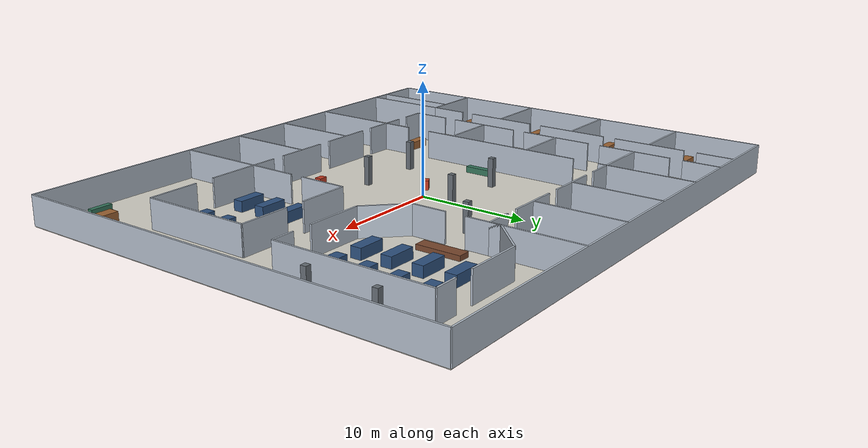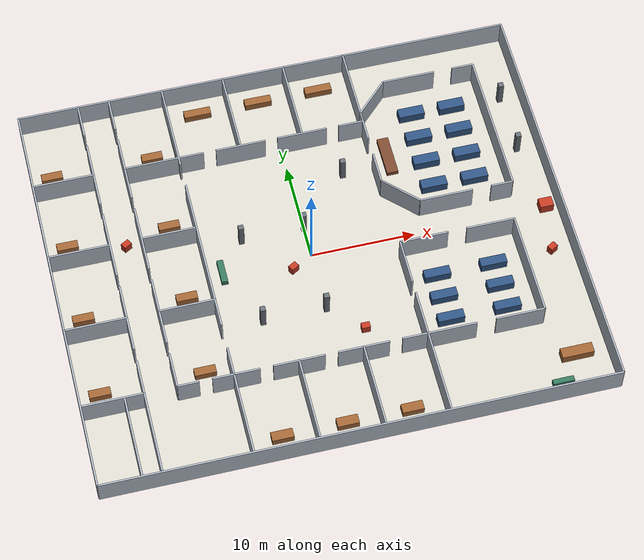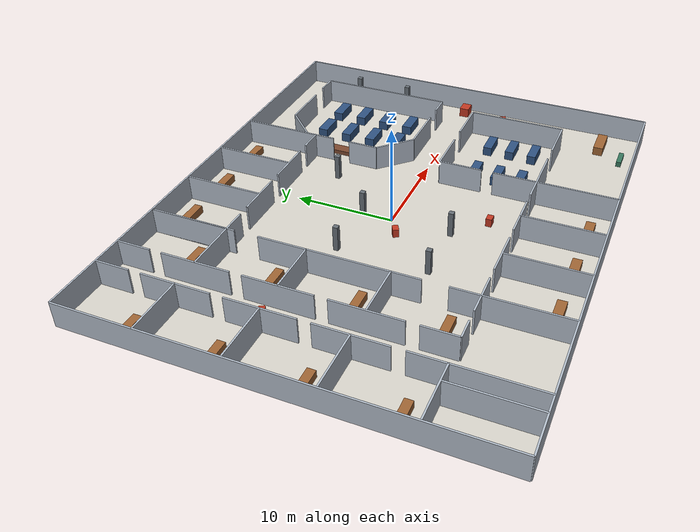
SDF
<sdf version="1.9">
  <world name="teaching_training_v1_test_101">
    <physics name="default" type="ignored">
      <max_step_size>0.01</max_step_size>
      <real_time_factor>1.0</real_time_factor>
    </physics>
    <gravity>0 0 -9.81</gravity>
    <plugin filename="gz-sim-physics-system" name="gz::sim::systems::Physics" />
    <plugin filename="gz-sim-user-commands-system" name="gz::sim::systems::UserCommands" />
    <plugin filename="gz-sim-scene-broadcaster-system" name="gz::sim::systems::SceneBroadcaster" />
    <plugin filename="gz-sim-sensors-system" name="gz::sim::systems::Sensors">
      <render_engine>ogre2</render_engine>
    </plugin>
    <plugin filename="gz-sim-imu-system" name="gz::sim::systems::Imu" />
    <scene>
      <ambient>.7 .7 .7 1</ambient>
      <background>.85 .88 .9 1</background>
    </scene>
    <light name="sun" type="directional">
      <pose>0 0 15 0 0 0</pose>
      <diffuse>.8 .8 .8 1</diffuse>
      <direction>-.3 -.2 -1</direction>
    </light>
    <model name="teaching_building">
      <static>true</static>
      <link name="structure">
        <collision name="floor_collision">
          <pose>0 0 -0.05 0 0 0</pose>
          <geometry>
            <box>
              <size>48.0 40.0 0.1</size>
            </box>
          </geometry>
        </collision>
        <visual name="floor_visual">
          <pose>0 0 -0.05 0 0 0</pose>
          <geometry>
            <box>
              <size>48.0 40.0 0.1</size>
            </box>
          </geometry>
          <material>
            <ambient>.84 .83 .79 1</ambient>
            <diffuse>.84 .83 .79 1</diffuse>
          </material>
        </visual>
        <collision name="outer_south_0_collision">
          <pose>0.0 -20.0 1.3 0 0 0.0</pose>
          <geometry>
            <box>
              <size>48.0 0.16 2.6</size>
            </box>
          </geometry>
        </collision>
        <visual name="outer_south_0_visual">
          <pose>0.0 -20.0 1.3 0 0 0.0</pose>
          <geometry>
            <box>
              <size>48.0 0.16 2.6</size>
            </box>
          </geometry>
          <material>
            <ambient>.7 .74 .79 1</ambient>
            <diffuse>.7 .74 .79 1</diffuse>
          </material>
        </visual>
        <collision name="outer_north_0_collision">
          <pose>0.0 20.0 1.3 0 0 0.0</pose>
          <geometry>
            <box>
              <size>48.0 0.16 2.6</size>
            </box>
          </geometry>
        </collision>
        <visual name="outer_north_0_visual">
          <pose>0.0 20.0 1.3 0 0 0.0</pose>
          <geometry>
            <box>
              <size>48.0 0.16 2.6</size>
            </box>
          </geometry>
          <material>
            <ambient>.7 .74 .79 1</ambient>
            <diffuse>.7 .74 .79 1</diffuse>
          </material>
        </visual>
        <collision name="outer_west_0_collision">
          <pose>-24.0 0.0 1.3 0 0 1.5707963267948966</pose>
          <geometry>
            <box>
              <size>40.0 0.16 2.6</size>
            </box>
          </geometry>
        </collision>
        <visual name="outer_west_0_visual">
          <pose>-24.0 0.0 1.3 0 0 1.5707963267948966</pose>
          <geometry>
            <box>
              <size>40.0 0.16 2.6</size>
            </box>
          </geometry>
          <material>
            <ambient>.7 .74 .79 1</ambient>
            <diffuse>.7 .74 .79 1</diffuse>
          </material>
        </visual>
        <collision name="outer_east_0_collision">
          <pose>24.0 0.0 1.3 0 0 1.5707963267948966</pose>
          <geometry>
            <box>
              <size>40.0 0.16 2.6</size>
            </box>
          </geometry>
        </collision>
        <visual name="outer_east_0_visual">
          <pose>24.0 0.0 1.3 0 0 1.5707963267948966</pose>
          <geometry>
            <box>
              <size>40.0 0.16 2.6</size>
            </box>
          </geometry>
          <material>
            <ambient>.7 .74 .79 1</ambient>
            <diffuse>.7 .74 .79 1</diffuse>
          </material>
        </visual>
        <collision name="west_spine_0_collision">
          <pose>-18.2 -10.3 1.3 0 0 1.5707963267948966</pose>
          <geometry>
            <box>
              <size>3.4 0.16 2.6</size>
            </box>
          </geometry>
        </collision>
        <visual name="west_spine_0_visual">
          <pose>-18.2 -10.3 1.3 0 0 1.5707963267948966</pose>
          <geometry>
            <box>
              <size>3.4 0.16 2.6</size>
            </box>
          </geometry>
          <material>
            <ambient>.7 .74 .79 1</ambient>
            <diffuse>.7 .74 .79 1</diffuse>
          </material>
        </visual>
        <collision name="west_spine_1_collision">
          <pose>-18.2 -4.0 1.3 0 0 1.5707963267948966</pose>
          <geometry>
            <box>
              <size>6.800000000000001 0.16 2.6</size>
            </box>
          </geometry>
        </collision>
        <visual name="west_spine_1_visual">
          <pose>-18.2 -4.0 1.3 0 0 1.5707963267948966</pose>
          <geometry>
            <box>
              <size>6.800000000000001 0.16 2.6</size>
            </box>
          </geometry>
          <material>
            <ambient>.7 .74 .79 1</ambient>
            <diffuse>.7 .74 .79 1</diffuse>
          </material>
        </visual>
        <collision name="west_spine_2_collision">
          <pose>-18.2 4.0 1.3 0 0 1.5707963267948966</pose>
          <geometry>
            <box>
              <size>6.799999999999999 0.16 2.6</size>
            </box>
          </geometry>
        </collision>
        <visual name="west_spine_2_visual">
          <pose>-18.2 4.0 1.3 0 0 1.5707963267948966</pose>
          <geometry>
            <box>
              <size>6.799999999999999 0.16 2.6</size>
            </box>
          </geometry>
          <material>
            <ambient>.7 .74 .79 1</ambient>
            <diffuse>.7 .74 .79 1</diffuse>
          </material>
        </visual>
        <collision name="west_spine_3_collision">
          <pose>-18.2 12.0 1.3 0 0 1.5707963267948966</pose>
          <geometry>
            <box>
              <size>6.799999999999997 0.16 2.6</size>
            </box>
          </geometry>
        </collision>
        <visual name="west_spine_3_visual">
          <pose>-18.2 12.0 1.3 0 0 1.5707963267948966</pose>
          <geometry>
            <box>
              <size>6.799999999999997 0.16 2.6</size>
            </box>
          </geometry>
          <material>
            <ambient>.7 .74 .79 1</ambient>
            <diffuse>.7 .74 .79 1</diffuse>
          </material>
        </visual>
        <collision name="west_spine_4_collision">
          <pose>-18.2 18.3 1.3 0 0 1.5707963267948966</pose>
          <geometry>
            <box>
              <size>3.3999999999999986 0.16 2.6</size>
            </box>
          </geometry>
        </collision>
        <visual name="west_spine_4_visual">
          <pose>-18.2 18.3 1.3 0 0 1.5707963267948966</pose>
          <geometry>
            <box>
              <size>3.3999999999999986 0.16 2.6</size>
            </box>
          </geometry>
          <material>
            <ambient>.7 .74 .79 1</ambient>
            <diffuse>.7 .74 .79 1</diffuse>
          </material>
        </visual>
        <collision name="east_spine_0_collision">
          <pose>-15.2 -10.3 1.3 0 0 1.5707963267948966</pose>
          <geometry>
            <box>
              <size>3.4 0.16 2.6</size>
            </box>
          </geometry>
        </collision>
        <visual name="east_spine_0_visual">
          <pose>-15.2 -10.3 1.3 0 0 1.5707963267948966</pose>
          <geometry>
            <box>
              <size>3.4 0.16 2.6</size>
            </box>
          </geometry>
          <material>
            <ambient>.7 .74 .79 1</ambient>
            <diffuse>.7 .74 .79 1</diffuse>
          </material>
        </visual>
        <collision name="east_spine_1_collision">
          <pose>-15.2 -4.0 1.3 0 0 1.5707963267948966</pose>
          <geometry>
            <box>
              <size>6.800000000000001 0.16 2.6</size>
            </box>
          </geometry>
        </collision>
        <visual name="east_spine_1_visual">
          <pose>-15.2 -4.0 1.3 0 0 1.5707963267948966</pose>
          <geometry>
            <box>
              <size>6.800000000000001 0.16 2.6</size>
            </box>
          </geometry>
          <material>
            <ambient>.7 .74 .79 1</ambient>
            <diffuse>.7 .74 .79 1</diffuse>
          </material>
        </visual>
        <collision name="east_spine_2_collision">
          <pose>-15.2 4.0 1.3 0 0 1.5707963267948966</pose>
          <geometry>
            <box>
              <size>6.799999999999999 0.16 2.6</size>
            </box>
          </geometry>
        </collision>
        <visual name="east_spine_2_visual">
          <pose>-15.2 4.0 1.3 0 0 1.5707963267948966</pose>
          <geometry>
            <box>
              <size>6.799999999999999 0.16 2.6</size>
            </box>
          </geometry>
          <material>
            <ambient>.7 .74 .79 1</ambient>
            <diffuse>.7 .74 .79 1</diffuse>
          </material>
        </visual>
        <collision name="east_spine_3_collision">
          <pose>-15.2 12.0 1.3 0 0 1.5707963267948966</pose>
          <geometry>
            <box>
              <size>6.799999999999997 0.16 2.6</size>
            </box>
          </geometry>
        </collision>
        <visual name="east_spine_3_visual">
          <pose>-15.2 12.0 1.3 0 0 1.5707963267948966</pose>
          <geometry>
            <box>
              <size>6.799999999999997 0.16 2.6</size>
            </box>
          </geometry>
          <material>
            <ambient>.7 .74 .79 1</ambient>
            <diffuse>.7 .74 .79 1</diffuse>
          </material>
        </visual>
        <collision name="east_spine_4_collision">
          <pose>-15.2 18.3 1.3 0 0 1.5707963267948966</pose>
          <geometry>
            <box>
              <size>3.3999999999999986 0.16 2.6</size>
            </box>
          </geometry>
        </collision>
        <visual name="east_spine_4_visual">
          <pose>-15.2 18.3 1.3 0 0 1.5707963267948966</pose>
          <geometry>
            <box>
              <size>3.3999999999999986 0.16 2.6</size>
            </box>
          </geometry>
          <material>
            <ambient>.7 .74 .79 1</ambient>
            <diffuse>.7 .74 .79 1</diffuse>
          </material>
        </visual>
        <collision name="classroom_hall_boundary_0_collision">
          <pose>-10.0 -10.6 1.3 0 0 1.5707963267948966</pose>
          <geometry>
            <box>
              <size>2.8 0.16 2.6</size>
            </box>
          </geometry>
        </collision>
        <visual name="classroom_hall_boundary_0_visual">
          <pose>-10.0 -10.6 1.3 0 0 1.5707963267948966</pose>
          <geometry>
            <box>
              <size>2.8 0.16 2.6</size>
            </box>
          </geometry>
          <material>
            <ambient>.7 .74 .79 1</ambient>
            <diffuse>.7 .74 .79 1</diffuse>
          </material>
        </visual>
        <collision name="classroom_hall_boundary_1_collision">
          <pose>-10.0 1.0 1.3 0 0 1.5707963267948966</pose>
          <geometry>
            <box>
              <size>15.600000000000001 0.16 2.6</size>
            </box>
          </geometry>
        </collision>
        <visual name="classroom_hall_boundary_1_visual">
          <pose>-10.0 1.0 1.3 0 0 1.5707963267948966</pose>
          <geometry>
            <box>
              <size>15.600000000000001 0.16 2.6</size>
            </box>
          </geometry>
          <material>
            <ambient>.7 .74 .79 1</ambient>
            <diffuse>.7 .74 .79 1</diffuse>
          </material>
        </visual>
        <collision name="classroom_hall_boundary_2_collision">
          <pose>-10.0 15.600000000000001 1.3 0 0 1.5707963267948966</pose>
          <geometry>
            <box>
              <size>8.8 0.16 2.6</size>
            </box>
          </geometry>
        </collision>
        <visual name="classroom_hall_boundary_2_visual">
          <pose>-10.0 15.600000000000001 1.3 0 0 1.5707963267948966</pose>
          <geometry>
            <box>
              <size>8.8 0.16 2.6</size>
            </box>
          </geometry>
          <material>
            <ambient>.7 .74 .79 1</ambient>
            <diffuse>.7 .74 .79 1</diffuse>
          </material>
        </visual>
        <collision name="west_partition_0_0_collision">
          <pose>-21.1 -12.0 1.3 0 0 0.0</pose>
          <geometry>
            <box>
              <size>5.800000000000001 0.16 2.6</size>
            </box>
          </geometry>
        </collision>
        <visual name="west_partition_0_0_visual">
          <pose>-21.1 -12.0 1.3 0 0 0.0</pose>
          <geometry>
            <box>
              <size>5.800000000000001 0.16 2.6</size>
            </box>
          </geometry>
          <material>
            <ambient>.7 .74 .79 1</ambient>
            <diffuse>.7 .74 .79 1</diffuse>
          </material>
        </visual>
        <collision name="east_partition_0_0_collision">
          <pose>-14.2 -12.0 1.3 0 0 0.0</pose>
          <geometry>
            <box>
              <size>2.0 0.16 2.6</size>
            </box>
          </geometry>
        </collision>
        <visual name="east_partition_0_0_visual">
          <pose>-14.2 -12.0 1.3 0 0 0.0</pose>
          <geometry>
            <box>
              <size>2.0 0.16 2.6</size>
            </box>
          </geometry>
          <material>
            <ambient>.7 .74 .79 1</ambient>
            <diffuse>.7 .74 .79 1</diffuse>
          </material>
        </visual>
        <collision name="east_partition_0_1_collision">
          <pose>-11.0 -12.0 1.3 0 0 0.0</pose>
          <geometry>
            <box>
              <size>1.9999999999999991 0.16 2.6</size>
            </box>
          </geometry>
        </collision>
        <visual name="east_partition_0_1_visual">
          <pose>-11.0 -12.0 1.3 0 0 0.0</pose>
          <geometry>
            <box>
              <size>1.9999999999999991 0.16 2.6</size>
            </box>
          </geometry>
          <material>
            <ambient>.7 .74 .79 1</ambient>
            <diffuse>.7 .74 .79 1</diffuse>
          </material>
        </visual>
        <collision name="desk_w0_collision">
          <pose>-22.0 -10.0 0.375 0 0 0.0</pose>
          <geometry>
            <box>
              <size>2.0 0.8 0.75</size>
            </box>
          </geometry>
        </collision>
        <visual name="desk_w0_visual">
          <pose>-22.0 -10.0 0.375 0 0 0.0</pose>
          <geometry>
            <box>
              <size>2.0 0.8 0.75</size>
            </box>
          </geometry>
          <material>
            <ambient>.62 .39 .2 1</ambient>
            <diffuse>.62 .39 .2 1</diffuse>
          </material>
        </visual>
        <collision name="desk_e0_collision">
          <pose>-12.3 -10.0 0.375 0 0 0.0</pose>
          <geometry>
            <box>
              <size>2.0 0.8 0.75</size>
            </box>
          </geometry>
        </collision>
        <visual name="desk_e0_visual">
          <pose>-12.3 -10.0 0.375 0 0 0.0</pose>
          <geometry>
            <box>
              <size>2.0 0.8 0.75</size>
            </box>
          </geometry>
          <material>
            <ambient>.62 .39 .2 1</ambient>
            <diffuse>.62 .39 .2 1</diffuse>
          </material>
        </visual>
        <collision name="west_partition_1_0_collision">
          <pose>-21.1 -4.0 1.3 0 0 0.0</pose>
          <geometry>
            <box>
              <size>5.800000000000001 0.16 2.6</size>
            </box>
          </geometry>
        </collision>
        <visual name="west_partition_1_0_visual">
          <pose>-21.1 -4.0 1.3 0 0 0.0</pose>
          <geometry>
            <box>
              <size>5.800000000000001 0.16 2.6</size>
            </box>
          </geometry>
          <material>
            <ambient>.7 .74 .79 1</ambient>
            <diffuse>.7 .74 .79 1</diffuse>
          </material>
        </visual>
        <collision name="east_partition_1_0_collision">
          <pose>-12.6 -4.0 1.3 0 0 0.0</pose>
          <geometry>
            <box>
              <size>5.199999999999999 0.16 2.6</size>
            </box>
          </geometry>
        </collision>
        <visual name="east_partition_1_0_visual">
          <pose>-12.6 -4.0 1.3 0 0 0.0</pose>
          <geometry>
            <box>
              <size>5.199999999999999 0.16 2.6</size>
            </box>
          </geometry>
          <material>
            <ambient>.7 .74 .79 1</ambient>
            <diffuse>.7 .74 .79 1</diffuse>
          </material>
        </visual>
        <collision name="desk_w1_collision">
          <pose>-22.0 -2.0 0.375 0 0 0.0</pose>
          <geometry>
            <box>
              <size>2.0 0.8 0.75</size>
            </box>
          </geometry>
        </collision>
        <visual name="desk_w1_visual">
          <pose>-22.0 -2.0 0.375 0 0 0.0</pose>
          <geometry>
            <box>
              <size>2.0 0.8 0.75</size>
            </box>
          </geometry>
          <material>
            <ambient>.62 .39 .2 1</ambient>
            <diffuse>.62 .39 .2 1</diffuse>
          </material>
        </visual>
        <collision name="desk_e1_collision">
          <pose>-12.3 -2.0 0.375 0 0 0.0</pose>
          <geometry>
            <box>
              <size>2.0 0.8 0.75</size>
            </box>
          </geometry>
        </collision>
        <visual name="desk_e1_visual">
          <pose>-12.3 -2.0 0.375 0 0 0.0</pose>
          <geometry>
            <box>
              <size>2.0 0.8 0.75</size>
            </box>
          </geometry>
          <material>
            <ambient>.62 .39 .2 1</ambient>
            <diffuse>.62 .39 .2 1</diffuse>
          </material>
        </visual>
        <collision name="west_partition_2_0_collision">
          <pose>-21.1 4.0 1.3 0 0 0.0</pose>
          <geometry>
            <box>
              <size>5.800000000000001 0.16 2.6</size>
            </box>
          </geometry>
        </collision>
        <visual name="west_partition_2_0_visual">
          <pose>-21.1 4.0 1.3 0 0 0.0</pose>
          <geometry>
            <box>
              <size>5.800000000000001 0.16 2.6</size>
            </box>
          </geometry>
          <material>
            <ambient>.7 .74 .79 1</ambient>
            <diffuse>.7 .74 .79 1</diffuse>
          </material>
        </visual>
        <collision name="east_partition_2_0_collision">
          <pose>-12.6 4.0 1.3 0 0 0.0</pose>
          <geometry>
            <box>
              <size>5.199999999999999 0.16 2.6</size>
            </box>
          </geometry>
        </collision>
        <visual name="east_partition_2_0_visual">
          <pose>-12.6 4.0 1.3 0 0 0.0</pose>
          <geometry>
            <box>
              <size>5.199999999999999 0.16 2.6</size>
            </box>
          </geometry>
          <material>
            <ambient>.7 .74 .79 1</ambient>
            <diffuse>.7 .74 .79 1</diffuse>
          </material>
        </visual>
        <collision name="desk_w2_collision">
          <pose>-22.0 6.0 0.375 0 0 0.0</pose>
          <geometry>
            <box>
              <size>2.0 0.8 0.75</size>
            </box>
          </geometry>
        </collision>
        <visual name="desk_w2_visual">
          <pose>-22.0 6.0 0.375 0 0 0.0</pose>
          <geometry>
            <box>
              <size>2.0 0.8 0.75</size>
            </box>
          </geometry>
          <material>
            <ambient>.62 .39 .2 1</ambient>
            <diffuse>.62 .39 .2 1</diffuse>
          </material>
        </visual>
        <collision name="desk_e2_collision">
          <pose>-12.3 6.0 0.375 0 0 0.0</pose>
          <geometry>
            <box>
              <size>2.0 0.8 0.75</size>
            </box>
          </geometry>
        </collision>
        <visual name="desk_e2_visual">
          <pose>-12.3 6.0 0.375 0 0 0.0</pose>
          <geometry>
            <box>
              <size>2.0 0.8 0.75</size>
            </box>
          </geometry>
          <material>
            <ambient>.62 .39 .2 1</ambient>
            <diffuse>.62 .39 .2 1</diffuse>
          </material>
        </visual>
        <collision name="west_partition_3_0_collision">
          <pose>-21.1 12.0 1.3 0 0 0.0</pose>
          <geometry>
            <box>
              <size>5.800000000000001 0.16 2.6</size>
            </box>
          </geometry>
        </collision>
        <visual name="west_partition_3_0_visual">
          <pose>-21.1 12.0 1.3 0 0 0.0</pose>
          <geometry>
            <box>
              <size>5.800000000000001 0.16 2.6</size>
            </box>
          </geometry>
          <material>
            <ambient>.7 .74 .79 1</ambient>
            <diffuse>.7 .74 .79 1</diffuse>
          </material>
        </visual>
        <collision name="east_partition_3_0_collision">
          <pose>-12.6 12.0 1.3 0 0 0.0</pose>
          <geometry>
            <box>
              <size>5.199999999999999 0.16 2.6</size>
            </box>
          </geometry>
        </collision>
        <visual name="east_partition_3_0_visual">
          <pose>-12.6 12.0 1.3 0 0 0.0</pose>
          <geometry>
            <box>
              <size>5.199999999999999 0.16 2.6</size>
            </box>
          </geometry>
          <material>
            <ambient>.7 .74 .79 1</ambient>
            <diffuse>.7 .74 .79 1</diffuse>
          </material>
        </visual>
        <collision name="desk_w3_collision">
          <pose>-22.0 14.0 0.375 0 0 0.0</pose>
          <geometry>
            <box>
              <size>2.0 0.8 0.75</size>
            </box>
          </geometry>
        </collision>
        <visual name="desk_w3_visual">
          <pose>-22.0 14.0 0.375 0 0 0.0</pose>
          <geometry>
            <box>
              <size>2.0 0.8 0.75</size>
            </box>
          </geometry>
          <material>
            <ambient>.62 .39 .2 1</ambient>
            <diffuse>.62 .39 .2 1</diffuse>
          </material>
        </visual>
        <collision name="desk_e3_collision">
          <pose>-12.3 14.0 0.375 0 0 0.0</pose>
          <geometry>
            <box>
              <size>2.0 0.8 0.75</size>
            </box>
          </geometry>
        </collision>
        <visual name="desk_e3_visual">
          <pose>-12.3 14.0 0.375 0 0 0.0</pose>
          <geometry>
            <box>
              <size>2.0 0.8 0.75</size>
            </box>
          </geometry>
          <material>
            <ambient>.62 .39 .2 1</ambient>
            <diffuse>.62 .39 .2 1</diffuse>
          </material>
        </visual>
        <collision name="north_services_0_collision">
          <pose>-8.8 12.0 1.3 0 0 0.0</pose>
          <geometry>
            <box>
              <size>2.4 0.16 2.6</size>
            </box>
          </geometry>
        </collision>
        <visual name="north_services_0_visual">
          <pose>-8.8 12.0 1.3 0 0 0.0</pose>
          <geometry>
            <box>
              <size>2.4 0.16 2.6</size>
            </box>
          </geometry>
          <material>
            <ambient>.7 .74 .79 1</ambient>
            <diffuse>.7 .74 .79 1</diffuse>
          </material>
        </visual>
        <collision name="north_services_1_collision">
          <pose>-4.0 12.0 1.3 0 0 0.0</pose>
          <geometry>
            <box>
              <size>4.800000000000001 0.16 2.6</size>
            </box>
          </geometry>
        </collision>
        <visual name="north_services_1_visual">
          <pose>-4.0 12.0 1.3 0 0 0.0</pose>
          <geometry>
            <box>
              <size>4.800000000000001 0.16 2.6</size>
            </box>
          </geometry>
          <material>
            <ambient>.7 .74 .79 1</ambient>
            <diffuse>.7 .74 .79 1</diffuse>
          </material>
        </visual>
        <collision name="north_services_2_collision">
          <pose>2.0 12.0 1.3 0 0 0.0</pose>
          <geometry>
            <box>
              <size>4.800000000000001 0.16 2.6</size>
            </box>
          </geometry>
        </collision>
        <visual name="north_services_2_visual">
          <pose>2.0 12.0 1.3 0 0 0.0</pose>
          <geometry>
            <box>
              <size>4.800000000000001 0.16 2.6</size>
            </box>
          </geometry>
          <material>
            <ambient>.7 .74 .79 1</ambient>
            <diffuse>.7 .74 .79 1</diffuse>
          </material>
        </visual>
        <collision name="north_services_3_collision">
          <pose>6.800000000000001 12.0 1.3 0 0 0.0</pose>
          <geometry>
            <box>
              <size>2.4000000000000004 0.16 2.6</size>
            </box>
          </geometry>
        </collision>
        <visual name="north_services_3_visual">
          <pose>6.800000000000001 12.0 1.3 0 0 0.0</pose>
          <geometry>
            <box>
              <size>2.4000000000000004 0.16 2.6</size>
            </box>
          </geometry>
          <material>
            <ambient>.7 .74 .79 1</ambient>
            <diffuse>.7 .74 .79 1</diffuse>
          </material>
        </visual>
        <collision name="north_divider_0_0_collision">
          <pose>-10.0 16.0 1.3 0 0 1.5707963267948966</pose>
          <geometry>
            <box>
              <size>8.0 0.16 2.6</size>
            </box>
          </geometry>
        </collision>
        <visual name="north_divider_0_0_visual">
          <pose>-10.0 16.0 1.3 0 0 1.5707963267948966</pose>
          <geometry>
            <box>
              <size>8.0 0.16 2.6</size>
            </box>
          </geometry>
          <material>
            <ambient>.7 .74 .79 1</ambient>
            <diffuse>.7 .74 .79 1</diffuse>
          </material>
        </visual>
        <collision name="north_divider_1_0_collision">
          <pose>-4.0 16.0 1.3 0 0 1.5707963267948966</pose>
          <geometry>
            <box>
              <size>8.0 0.16 2.6</size>
            </box>
          </geometry>
        </collision>
        <visual name="north_divider_1_0_visual">
          <pose>-4.0 16.0 1.3 0 0 1.5707963267948966</pose>
          <geometry>
            <box>
              <size>8.0 0.16 2.6</size>
            </box>
          </geometry>
          <material>
            <ambient>.7 .74 .79 1</ambient>
            <diffuse>.7 .74 .79 1</diffuse>
          </material>
        </visual>
        <collision name="north_divider_2_0_collision">
          <pose>2.0 16.0 1.3 0 0 1.5707963267948966</pose>
          <geometry>
            <box>
              <size>8.0 0.16 2.6</size>
            </box>
          </geometry>
        </collision>
        <visual name="north_divider_2_0_visual">
          <pose>2.0 16.0 1.3 0 0 1.5707963267948966</pose>
          <geometry>
            <box>
              <size>8.0 0.16 2.6</size>
            </box>
          </geometry>
          <material>
            <ambient>.7 .74 .79 1</ambient>
            <diffuse>.7 .74 .79 1</diffuse>
          </material>
        </visual>
        <collision name="north_divider_3_0_collision">
          <pose>8.0 16.0 1.3 0 0 1.5707963267948966</pose>
          <geometry>
            <box>
              <size>8.0 0.16 2.6</size>
            </box>
          </geometry>
        </collision>
        <visual name="north_divider_3_0_visual">
          <pose>8.0 16.0 1.3 0 0 1.5707963267948966</pose>
          <geometry>
            <box>
              <size>8.0 0.16 2.6</size>
            </box>
          </geometry>
          <material>
            <ambient>.7 .74 .79 1</ambient>
            <diffuse>.7 .74 .79 1</diffuse>
          </material>
        </visual>
        <collision name="north_desk_0_collision">
          <pose>-7.0 18 0.375 0 0 0.0</pose>
          <geometry>
            <box>
              <size>2.6 0.8 0.75</size>
            </box>
          </geometry>
        </collision>
        <visual name="north_desk_0_visual">
          <pose>-7.0 18 0.375 0 0 0.0</pose>
          <geometry>
            <box>
              <size>2.6 0.8 0.75</size>
            </box>
          </geometry>
          <material>
            <ambient>.62 .39 .2 1</ambient>
            <diffuse>.62 .39 .2 1</diffuse>
          </material>
        </visual>
        <collision name="north_desk_1_collision">
          <pose>-1.0 18 0.375 0 0 0.0</pose>
          <geometry>
            <box>
              <size>2.6 0.8 0.75</size>
            </box>
          </geometry>
        </collision>
        <visual name="north_desk_1_visual">
          <pose>-1.0 18 0.375 0 0 0.0</pose>
          <geometry>
            <box>
              <size>2.6 0.8 0.75</size>
            </box>
          </geometry>
          <material>
            <ambient>.62 .39 .2 1</ambient>
            <diffuse>.62 .39 .2 1</diffuse>
          </material>
        </visual>
        <collision name="north_desk_2_collision">
          <pose>5.0 18 0.375 0 0 0.0</pose>
          <geometry>
            <box>
              <size>2.6 0.8 0.75</size>
            </box>
          </geometry>
        </collision>
        <visual name="north_desk_2_visual">
          <pose>5.0 18 0.375 0 0 0.0</pose>
          <geometry>
            <box>
              <size>2.6 0.8 0.75</size>
            </box>
          </geometry>
          <material>
            <ambient>.62 .39 .2 1</ambient>
            <diffuse>.62 .39 .2 1</diffuse>
          </material>
        </visual>
        <collision name="south_seminars_0_collision">
          <pose>-8.8 -12.0 1.3 0 0 0.0</pose>
          <geometry>
            <box>
              <size>2.4 0.16 2.6</size>
            </box>
          </geometry>
        </collision>
        <visual name="south_seminars_0_visual">
          <pose>-8.8 -12.0 1.3 0 0 0.0</pose>
          <geometry>
            <box>
              <size>2.4 0.16 2.6</size>
            </box>
          </geometry>
          <material>
            <ambient>.7 .74 .79 1</ambient>
            <diffuse>.7 .74 .79 1</diffuse>
          </material>
        </visual>
        <collision name="south_seminars_1_collision">
          <pose>-4.0 -12.0 1.3 0 0 0.0</pose>
          <geometry>
            <box>
              <size>4.800000000000001 0.16 2.6</size>
            </box>
          </geometry>
        </collision>
        <visual name="south_seminars_1_visual">
          <pose>-4.0 -12.0 1.3 0 0 0.0</pose>
          <geometry>
            <box>
              <size>4.800000000000001 0.16 2.6</size>
            </box>
          </geometry>
          <material>
            <ambient>.7 .74 .79 1</ambient>
            <diffuse>.7 .74 .79 1</diffuse>
          </material>
        </visual>
        <collision name="south_seminars_2_collision">
          <pose>2.0 -12.0 1.3 0 0 0.0</pose>
          <geometry>
            <box>
              <size>4.800000000000001 0.16 2.6</size>
            </box>
          </geometry>
        </collision>
        <visual name="south_seminars_2_visual">
          <pose>2.0 -12.0 1.3 0 0 0.0</pose>
          <geometry>
            <box>
              <size>4.800000000000001 0.16 2.6</size>
            </box>
          </geometry>
          <material>
            <ambient>.7 .74 .79 1</ambient>
            <diffuse>.7 .74 .79 1</diffuse>
          </material>
        </visual>
        <collision name="south_seminars_3_collision">
          <pose>6.800000000000001 -12.0 1.3 0 0 0.0</pose>
          <geometry>
            <box>
              <size>2.4000000000000004 0.16 2.6</size>
            </box>
          </geometry>
        </collision>
        <visual name="south_seminars_3_visual">
          <pose>6.800000000000001 -12.0 1.3 0 0 0.0</pose>
          <geometry>
            <box>
              <size>2.4000000000000004 0.16 2.6</size>
            </box>
          </geometry>
          <material>
            <ambient>.7 .74 .79 1</ambient>
            <diffuse>.7 .74 .79 1</diffuse>
          </material>
        </visual>
        <collision name="south_divider_0_0_collision">
          <pose>-10.0 -16.0 1.3 0 0 1.5707963267948966</pose>
          <geometry>
            <box>
              <size>8.0 0.16 2.6</size>
            </box>
          </geometry>
        </collision>
        <visual name="south_divider_0_0_visual">
          <pose>-10.0 -16.0 1.3 0 0 1.5707963267948966</pose>
          <geometry>
            <box>
              <size>8.0 0.16 2.6</size>
            </box>
          </geometry>
          <material>
            <ambient>.7 .74 .79 1</ambient>
            <diffuse>.7 .74 .79 1</diffuse>
          </material>
        </visual>
        <collision name="south_divider_1_0_collision">
          <pose>-4.0 -16.0 1.3 0 0 1.5707963267948966</pose>
          <geometry>
            <box>
              <size>8.0 0.16 2.6</size>
            </box>
          </geometry>
        </collision>
        <visual name="south_divider_1_0_visual">
          <pose>-4.0 -16.0 1.3 0 0 1.5707963267948966</pose>
          <geometry>
            <box>
              <size>8.0 0.16 2.6</size>
            </box>
          </geometry>
          <material>
            <ambient>.7 .74 .79 1</ambient>
            <diffuse>.7 .74 .79 1</diffuse>
          </material>
        </visual>
        <collision name="south_divider_2_0_collision">
          <pose>2.0 -16.0 1.3 0 0 1.5707963267948966</pose>
          <geometry>
            <box>
              <size>8.0 0.16 2.6</size>
            </box>
          </geometry>
        </collision>
        <visual name="south_divider_2_0_visual">
          <pose>2.0 -16.0 1.3 0 0 1.5707963267948966</pose>
          <geometry>
            <box>
              <size>8.0 0.16 2.6</size>
            </box>
          </geometry>
          <material>
            <ambient>.7 .74 .79 1</ambient>
            <diffuse>.7 .74 .79 1</diffuse>
          </material>
        </visual>
        <collision name="south_divider_3_0_collision">
          <pose>8.0 -16.0 1.3 0 0 1.5707963267948966</pose>
          <geometry>
            <box>
              <size>8.0 0.16 2.6</size>
            </box>
          </geometry>
        </collision>
        <visual name="south_divider_3_0_visual">
          <pose>8.0 -16.0 1.3 0 0 1.5707963267948966</pose>
          <geometry>
            <box>
              <size>8.0 0.16 2.6</size>
            </box>
          </geometry>
          <material>
            <ambient>.7 .74 .79 1</ambient>
            <diffuse>.7 .74 .79 1</diffuse>
          </material>
        </visual>
        <collision name="seminar_table_0_collision">
          <pose>-7.0 -18 0.375 0 0 0.0</pose>
          <geometry>
            <box>
              <size>2.0 0.9 0.75</size>
            </box>
          </geometry>
        </collision>
        <visual name="seminar_table_0_visual">
          <pose>-7.0 -18 0.375 0 0 0.0</pose>
          <geometry>
            <box>
              <size>2.0 0.9 0.75</size>
            </box>
          </geometry>
          <material>
            <ambient>.62 .39 .2 1</ambient>
            <diffuse>.62 .39 .2 1</diffuse>
          </material>
        </visual>
        <collision name="seminar_table_1_collision">
          <pose>-1.0 -18 0.375 0 0 0.0</pose>
          <geometry>
            <box>
              <size>2.0 0.9 0.75</size>
            </box>
          </geometry>
        </collision>
        <visual name="seminar_table_1_visual">
          <pose>-1.0 -18 0.375 0 0 0.0</pose>
          <geometry>
            <box>
              <size>2.0 0.9 0.75</size>
            </box>
          </geometry>
          <material>
            <ambient>.62 .39 .2 1</ambient>
            <diffuse>.62 .39 .2 1</diffuse>
          </material>
        </visual>
        <collision name="seminar_table_2_collision">
          <pose>5.0 -18 0.375 0 0 0.0</pose>
          <geometry>
            <box>
              <size>2.0 0.9 0.75</size>
            </box>
          </geometry>
        </collision>
        <visual name="seminar_table_2_visual">
          <pose>5.0 -18 0.375 0 0 0.0</pose>
          <geometry>
            <box>
              <size>2.0 0.9 0.75</size>
            </box>
          </geometry>
          <material>
            <ambient>.62 .39 .2 1</ambient>
            <diffuse>.62 .39 .2 1</diffuse>
          </material>
        </visual>
        <collision name="stair_boundary_0_collision">
          <pose>-18.2 -16.0 1.3 0 0 1.5707963267948966</pose>
          <geometry>
            <box>
              <size>8.0 0.16 2.6</size>
            </box>
          </geometry>
        </collision>
        <visual name="stair_boundary_0_visual">
          <pose>-18.2 -16.0 1.3 0 0 1.5707963267948966</pose>
          <geometry>
            <box>
              <size>8.0 0.16 2.6</size>
            </box>
          </geometry>
          <material>
            <ambient>.7 .74 .79 1</ambient>
            <diffuse>.7 .74 .79 1</diffuse>
          </material>
        </visual>
        <collision name="stair_elevator_divider_0_collision">
          <pose>-20.0 -16.0 1.3 0 0 1.5707963267948966</pose>
          <geometry>
            <box>
              <size>8.0 0.16 2.6</size>
            </box>
          </geometry>
        </collision>
        <visual name="stair_elevator_divider_0_visual">
          <pose>-20.0 -16.0 1.3 0 0 1.5707963267948966</pose>
          <geometry>
            <box>
              <size>8.0 0.16 2.6</size>
            </box>
          </geometry>
          <material>
            <ambient>.7 .74 .79 1</ambient>
            <diffuse>.7 .74 .79 1</diffuse>
          </material>
        </visual>
        <collision name="auditorium_0_0_collision">
          <pose>9.5 3.5 1.3 0 0 -0.7853981633974483</pose>
          <geometry>
            <box>
              <size>4.242640687119285 0.16 2.6</size>
            </box>
          </geometry>
        </collision>
        <visual name="auditorium_0_0_visual">
          <pose>9.5 3.5 1.3 0 0 -0.7853981633974483</pose>
          <geometry>
            <box>
              <size>4.242640687119285 0.16 2.6</size>
            </box>
          </geometry>
          <material>
            <ambient>.7 .74 .79 1</ambient>
            <diffuse>.7 .74 .79 1</diffuse>
          </material>
        </visual>
        <collision name="auditorium_1_0_collision">
          <pose>13.55 2.0 1.3 0 0 0.0</pose>
          <geometry>
            <box>
              <size>5.1 0.16 2.6</size>
            </box>
          </geometry>
        </collision>
        <visual name="auditorium_1_0_visual">
          <pose>13.55 2.0 1.3 0 0 0.0</pose>
          <geometry>
            <box>
              <size>5.1 0.16 2.6</size>
            </box>
          </geometry>
          <material>
            <ambient>.7 .74 .79 1</ambient>
            <diffuse>.7 .74 .79 1</diffuse>
          </material>
        </visual>
        <collision name="auditorium_1_1_collision">
          <pose>18.95 2.0 1.3 0 0 0.0</pose>
          <geometry>
            <box>
              <size>2.0999999999999996 0.16 2.6</size>
            </box>
          </geometry>
        </collision>
        <visual name="auditorium_1_1_visual">
          <pose>18.95 2.0 1.3 0 0 0.0</pose>
          <geometry>
            <box>
              <size>2.0999999999999996 0.16 2.6</size>
            </box>
          </geometry>
          <material>
            <ambient>.7 .74 .79 1</ambient>
            <diffuse>.7 .74 .79 1</diffuse>
          </material>
        </visual>
        <collision name="auditorium_2_0_collision">
          <pose>20.0 9.0 1.3 0 0 1.5707963267948966</pose>
          <geometry>
            <box>
              <size>14.0 0.16 2.6</size>
            </box>
          </geometry>
        </collision>
        <visual name="auditorium_2_0_visual">
          <pose>20.0 9.0 1.3 0 0 1.5707963267948966</pose>
          <geometry>
            <box>
              <size>14.0 0.16 2.6</size>
            </box>
          </geometry>
          <material>
            <ambient>.7 .74 .79 1</ambient>
            <diffuse>.7 .74 .79 1</diffuse>
          </material>
        </visual>
        <collision name="auditorium_3_0_collision">
          <pose>18.95 16.0 1.3 0 0 3.141592653589793</pose>
          <geometry>
            <box>
              <size>2.1 0.16 2.6</size>
            </box>
          </geometry>
        </collision>
        <visual name="auditorium_3_0_visual">
          <pose>18.95 16.0 1.3 0 0 3.141592653589793</pose>
          <geometry>
            <box>
              <size>2.1 0.16 2.6</size>
            </box>
          </geometry>
          <material>
            <ambient>.7 .74 .79 1</ambient>
            <diffuse>.7 .74 .79 1</diffuse>
          </material>
        </visual>
        <collision name="auditorium_3_1_collision">
          <pose>13.55 16.0 1.3 0 0 3.141592653589793</pose>
          <geometry>
            <box>
              <size>5.1 0.16 2.6</size>
            </box>
          </geometry>
        </collision>
        <visual name="auditorium_3_1_visual">
          <pose>13.55 16.0 1.3 0 0 3.141592653589793</pose>
          <geometry>
            <box>
              <size>5.1 0.16 2.6</size>
            </box>
          </geometry>
          <material>
            <ambient>.7 .74 .79 1</ambient>
            <diffuse>.7 .74 .79 1</diffuse>
          </material>
        </visual>
        <collision name="auditorium_4_0_collision">
          <pose>9.5 14.5 1.3 0 0 -2.356194490192345</pose>
          <geometry>
            <box>
              <size>4.242640687119285 0.16 2.6</size>
            </box>
          </geometry>
        </collision>
        <visual name="auditorium_4_0_visual">
          <pose>9.5 14.5 1.3 0 0 -2.356194490192345</pose>
          <geometry>
            <box>
              <size>4.242640687119285 0.16 2.6</size>
            </box>
          </geometry>
          <material>
            <ambient>.7 .74 .79 1</ambient>
            <diffuse>.7 .74 .79 1</diffuse>
          </material>
        </visual>
        <collision name="auditorium_5_0_collision">
          <pose>8.0 11.45 1.3 0 0 -1.5707963267948966</pose>
          <geometry>
            <box>
              <size>3.1 0.16 2.6</size>
            </box>
          </geometry>
        </collision>
        <visual name="auditorium_5_0_visual">
          <pose>8.0 11.45 1.3 0 0 -1.5707963267948966</pose>
          <geometry>
            <box>
              <size>3.1 0.16 2.6</size>
            </box>
          </geometry>
          <material>
            <ambient>.7 .74 .79 1</ambient>
            <diffuse>.7 .74 .79 1</diffuse>
          </material>
        </visual>
        <collision name="auditorium_5_1_collision">
          <pose>8.0 6.55 1.3 0 0 -1.5707963267948966</pose>
          <geometry>
            <box>
              <size>3.0999999999999996 0.16 2.6</size>
            </box>
          </geometry>
        </collision>
        <visual name="auditorium_5_1_visual">
          <pose>8.0 6.55 1.3 0 0 -1.5707963267948966</pose>
          <geometry>
            <box>
              <size>3.0999999999999996 0.16 2.6</size>
            </box>
          </geometry>
          <material>
            <ambient>.7 .74 .79 1</ambient>
            <diffuse>.7 .74 .79 1</diffuse>
          </material>
        </visual>
        <collision name="aud_seats_0_0_collision">
          <pose>13.1 4.7 0.475 0 0 0.0</pose>
          <geometry>
            <box>
              <size>2.5 1.0 0.95</size>
            </box>
          </geometry>
        </collision>
        <visual name="aud_seats_0_0_visual">
          <pose>13.1 4.7 0.475 0 0 0.0</pose>
          <geometry>
            <box>
              <size>2.5 1.0 0.95</size>
            </box>
          </geometry>
          <material>
            <ambient>.18 .32 .5 1</ambient>
            <diffuse>.18 .32 .5 1</diffuse>
          </material>
        </visual>
        <collision name="aud_seats_0_1_collision">
          <pose>17.1 4.7 0.475 0 0 0.0</pose>
          <geometry>
            <box>
              <size>2.5 1.0 0.95</size>
            </box>
          </geometry>
        </collision>
        <visual name="aud_seats_0_1_visual">
          <pose>17.1 4.7 0.475 0 0 0.0</pose>
          <geometry>
            <box>
              <size>2.5 1.0 0.95</size>
            </box>
          </geometry>
          <material>
            <ambient>.18 .32 .5 1</ambient>
            <diffuse>.18 .32 .5 1</diffuse>
          </material>
        </visual>
        <collision name="aud_seats_1_0_collision">
          <pose>13.1 7.5 0.475 0 0 0.0</pose>
          <geometry>
            <box>
              <size>2.5 1.0 0.95</size>
            </box>
          </geometry>
        </collision>
        <visual name="aud_seats_1_0_visual">
          <pose>13.1 7.5 0.475 0 0 0.0</pose>
          <geometry>
            <box>
              <size>2.5 1.0 0.95</size>
            </box>
          </geometry>
          <material>
            <ambient>.18 .32 .5 1</ambient>
            <diffuse>.18 .32 .5 1</diffuse>
          </material>
        </visual>
        <collision name="aud_seats_1_1_collision">
          <pose>17.1 7.5 0.475 0 0 0.0</pose>
          <geometry>
            <box>
              <size>2.5 1.0 0.95</size>
            </box>
          </geometry>
        </collision>
        <visual name="aud_seats_1_1_visual">
          <pose>17.1 7.5 0.475 0 0 0.0</pose>
          <geometry>
            <box>
              <size>2.5 1.0 0.95</size>
            </box>
          </geometry>
          <material>
            <ambient>.18 .32 .5 1</ambient>
            <diffuse>.18 .32 .5 1</diffuse>
          </material>
        </visual>
        <collision name="aud_seats_2_0_collision">
          <pose>13.1 10.3 0.475 0 0 0.0</pose>
          <geometry>
            <box>
              <size>2.5 1.0 0.95</size>
            </box>
          </geometry>
        </collision>
        <visual name="aud_seats_2_0_visual">
          <pose>13.1 10.3 0.475 0 0 0.0</pose>
          <geometry>
            <box>
              <size>2.5 1.0 0.95</size>
            </box>
          </geometry>
          <material>
            <ambient>.18 .32 .5 1</ambient>
            <diffuse>.18 .32 .5 1</diffuse>
          </material>
        </visual>
        <collision name="aud_seats_2_1_collision">
          <pose>17.1 10.3 0.475 0 0 0.0</pose>
          <geometry>
            <box>
              <size>2.5 1.0 0.95</size>
            </box>
          </geometry>
        </collision>
        <visual name="aud_seats_2_1_visual">
          <pose>17.1 10.3 0.475 0 0 0.0</pose>
          <geometry>
            <box>
              <size>2.5 1.0 0.95</size>
            </box>
          </geometry>
          <material>
            <ambient>.18 .32 .5 1</ambient>
            <diffuse>.18 .32 .5 1</diffuse>
          </material>
        </visual>
        <collision name="aud_seats_3_0_collision">
          <pose>13.1 13.1 0.475 0 0 0.0</pose>
          <geometry>
            <box>
              <size>2.5 1.0 0.95</size>
            </box>
          </geometry>
        </collision>
        <visual name="aud_seats_3_0_visual">
          <pose>13.1 13.1 0.475 0 0 0.0</pose>
          <geometry>
            <box>
              <size>2.5 1.0 0.95</size>
            </box>
          </geometry>
          <material>
            <ambient>.18 .32 .5 1</ambient>
            <diffuse>.18 .32 .5 1</diffuse>
          </material>
        </visual>
        <collision name="aud_seats_3_1_collision">
          <pose>17.1 13.1 0.475 0 0 0.0</pose>
          <geometry>
            <box>
              <size>2.5 1.0 0.95</size>
            </box>
          </geometry>
        </collision>
        <visual name="aud_seats_3_1_visual">
          <pose>17.1 13.1 0.475 0 0 0.0</pose>
          <geometry>
            <box>
              <size>2.5 1.0 0.95</size>
            </box>
          </geometry>
          <material>
            <ambient>.18 .32 .5 1</ambient>
            <diffuse>.18 .32 .5 1</diffuse>
          </material>
        </visual>
        <collision name="aud_stage_collision">
          <pose>9.7 9 0.225 0 0 0.0</pose>
          <geometry>
            <box>
              <size>1.1 4.0 0.45</size>
            </box>
          </geometry>
        </collision>
        <visual name="aud_stage_visual">
          <pose>9.7 9 0.225 0 0 0.0</pose>
          <geometry>
            <box>
              <size>1.1 4.0 0.45</size>
            </box>
          </geometry>
          <material>
            <ambient>.48 .28 .18 1</ambient>
            <diffuse>.48 .28 .18 1</diffuse>
          </material>
        </visual>
        <collision name="lecture_north_0_collision">
          <pose>10.3 -2.0 1.3 0 0 0.0</pose>
          <geometry>
            <box>
              <size>4.6 0.16 2.6</size>
            </box>
          </geometry>
        </collision>
        <visual name="lecture_north_0_visual">
          <pose>10.3 -2.0 1.3 0 0 0.0</pose>
          <geometry>
            <box>
              <size>4.6 0.16 2.6</size>
            </box>
          </geometry>
          <material>
            <ambient>.7 .74 .79 1</ambient>
            <diffuse>.7 .74 .79 1</diffuse>
          </material>
        </visual>
        <collision name="lecture_north_1_collision">
          <pose>16.7 -2.0 1.3 0 0 0.0</pose>
          <geometry>
            <box>
              <size>4.6 0.16 2.6</size>
            </box>
          </geometry>
        </collision>
        <visual name="lecture_north_1_visual">
          <pose>16.7 -2.0 1.3 0 0 0.0</pose>
          <geometry>
            <box>
              <size>4.6 0.16 2.6</size>
            </box>
          </geometry>
          <material>
            <ambient>.7 .74 .79 1</ambient>
            <diffuse>.7 .74 .79 1</diffuse>
          </material>
        </visual>
        <collision name="lecture_south_0_collision">
          <pose>10.3 -12.0 1.3 0 0 0.0</pose>
          <geometry>
            <box>
              <size>4.6 0.16 2.6</size>
            </box>
          </geometry>
        </collision>
        <visual name="lecture_south_0_visual">
          <pose>10.3 -12.0 1.3 0 0 0.0</pose>
          <geometry>
            <box>
              <size>4.6 0.16 2.6</size>
            </box>
          </geometry>
          <material>
            <ambient>.7 .74 .79 1</ambient>
            <diffuse>.7 .74 .79 1</diffuse>
          </material>
        </visual>
        <collision name="lecture_south_1_collision">
          <pose>16.7 -12.0 1.3 0 0 0.0</pose>
          <geometry>
            <box>
              <size>4.6 0.16 2.6</size>
            </box>
          </geometry>
        </collision>
        <visual name="lecture_south_1_visual">
          <pose>16.7 -12.0 1.3 0 0 0.0</pose>
          <geometry>
            <box>
              <size>4.6 0.16 2.6</size>
            </box>
          </geometry>
          <material>
            <ambient>.7 .74 .79 1</ambient>
            <diffuse>.7 .74 .79 1</diffuse>
          </material>
        </visual>
        <collision name="lecture_west_0_collision">
          <pose>8.0 -9.8 1.3 0 0 1.5707963267948966</pose>
          <geometry>
            <box>
              <size>4.4 0.16 2.6</size>
            </box>
          </geometry>
        </collision>
        <visual name="lecture_west_0_visual">
          <pose>8.0 -9.8 1.3 0 0 1.5707963267948966</pose>
          <geometry>
            <box>
              <size>4.4 0.16 2.6</size>
            </box>
          </geometry>
          <material>
            <ambient>.7 .74 .79 1</ambient>
            <diffuse>.7 .74 .79 1</diffuse>
          </material>
        </visual>
        <collision name="lecture_west_1_collision">
          <pose>8.0 -4.2 1.3 0 0 1.5707963267948966</pose>
          <geometry>
            <box>
              <size>4.4 0.16 2.6</size>
            </box>
          </geometry>
        </collision>
        <visual name="lecture_west_1_visual">
          <pose>8.0 -4.2 1.3 0 0 1.5707963267948966</pose>
          <geometry>
            <box>
              <size>4.4 0.16 2.6</size>
            </box>
          </geometry>
          <material>
            <ambient>.7 .74 .79 1</ambient>
            <diffuse>.7 .74 .79 1</diffuse>
          </material>
        </visual>
        <collision name="lecture_east_0_collision">
          <pose>19.0 -7.0 1.3 0 0 1.5707963267948966</pose>
          <geometry>
            <box>
              <size>10.0 0.16 2.6</size>
            </box>
          </geometry>
        </collision>
        <visual name="lecture_east_0_visual">
          <pose>19.0 -7.0 1.3 0 0 1.5707963267948966</pose>
          <geometry>
            <box>
              <size>10.0 0.16 2.6</size>
            </box>
          </geometry>
          <material>
            <ambient>.7 .74 .79 1</ambient>
            <diffuse>.7 .74 .79 1</diffuse>
          </material>
        </visual>
        <collision name="lecture_seats_0_0_collision">
          <pose>10.8 -9.8 0.475 0 0 0.0</pose>
          <geometry>
            <box>
              <size>2.5 0.9 0.95</size>
            </box>
          </geometry>
        </collision>
        <visual name="lecture_seats_0_0_visual">
          <pose>10.8 -9.8 0.475 0 0 0.0</pose>
          <geometry>
            <box>
              <size>2.5 0.9 0.95</size>
            </box>
          </geometry>
          <material>
            <ambient>.18 .32 .5 1</ambient>
            <diffuse>.18 .32 .5 1</diffuse>
          </material>
        </visual>
        <collision name="lecture_seats_0_1_collision">
          <pose>16.2 -9.8 0.475 0 0 0.0</pose>
          <geometry>
            <box>
              <size>2.5 0.9 0.95</size>
            </box>
          </geometry>
        </collision>
        <visual name="lecture_seats_0_1_visual">
          <pose>16.2 -9.8 0.475 0 0 0.0</pose>
          <geometry>
            <box>
              <size>2.5 0.9 0.95</size>
            </box>
          </geometry>
          <material>
            <ambient>.18 .32 .5 1</ambient>
            <diffuse>.18 .32 .5 1</diffuse>
          </material>
        </visual>
        <collision name="lecture_seats_1_0_collision">
          <pose>10.8 -7.4 0.475 0 0 0.0</pose>
          <geometry>
            <box>
              <size>2.5 0.9 0.95</size>
            </box>
          </geometry>
        </collision>
        <visual name="lecture_seats_1_0_visual">
          <pose>10.8 -7.4 0.475 0 0 0.0</pose>
          <geometry>
            <box>
              <size>2.5 0.9 0.95</size>
            </box>
          </geometry>
          <material>
            <ambient>.18 .32 .5 1</ambient>
            <diffuse>.18 .32 .5 1</diffuse>
          </material>
        </visual>
        <collision name="lecture_seats_1_1_collision">
          <pose>16.2 -7.4 0.475 0 0 0.0</pose>
          <geometry>
            <box>
              <size>2.5 0.9 0.95</size>
            </box>
          </geometry>
        </collision>
        <visual name="lecture_seats_1_1_visual">
          <pose>16.2 -7.4 0.475 0 0 0.0</pose>
          <geometry>
            <box>
              <size>2.5 0.9 0.95</size>
            </box>
          </geometry>
          <material>
            <ambient>.18 .32 .5 1</ambient>
            <diffuse>.18 .32 .5 1</diffuse>
          </material>
        </visual>
        <collision name="lecture_seats_2_0_collision">
          <pose>10.8 -5.0 0.475 0 0 0.0</pose>
          <geometry>
            <box>
              <size>2.5 0.9 0.95</size>
            </box>
          </geometry>
        </collision>
        <visual name="lecture_seats_2_0_visual">
          <pose>10.8 -5.0 0.475 0 0 0.0</pose>
          <geometry>
            <box>
              <size>2.5 0.9 0.95</size>
            </box>
          </geometry>
          <material>
            <ambient>.18 .32 .5 1</ambient>
            <diffuse>.18 .32 .5 1</diffuse>
          </material>
        </visual>
        <collision name="lecture_seats_2_1_collision">
          <pose>16.2 -5.0 0.475 0 0 0.0</pose>
          <geometry>
            <box>
              <size>2.5 0.9 0.95</size>
            </box>
          </geometry>
        </collision>
        <visual name="lecture_seats_2_1_visual">
          <pose>16.2 -5.0 0.475 0 0 0.0</pose>
          <geometry>
            <box>
              <size>2.5 0.9 0.95</size>
            </box>
          </geometry>
          <material>
            <ambient>.18 .32 .5 1</ambient>
            <diffuse>.18 .32 .5 1</diffuse>
          </material>
        </visual>
        <collision name="pillar_0_collision">
          <pose>-6 -6 1.3 0 0 0.0</pose>
          <geometry>
            <box>
              <size>0.5 0.5 2.6</size>
            </box>
          </geometry>
        </collision>
        <visual name="pillar_0_visual">
          <pose>-6 -6 1.3 0 0 0.0</pose>
          <geometry>
            <box>
              <size>0.5 0.5 2.6</size>
            </box>
          </geometry>
          <material>
            <ambient>.4 .43 .46 1</ambient>
            <diffuse>.4 .43 .46 1</diffuse>
          </material>
        </visual>
        <collision name="pillar_1_collision">
          <pose>-6 3 1.3 0 0 0.0</pose>
          <geometry>
            <box>
              <size>0.5 0.5 2.6</size>
            </box>
          </geometry>
        </collision>
        <visual name="pillar_1_visual">
          <pose>-6 3 1.3 0 0 0.0</pose>
          <geometry>
            <box>
              <size>0.5 0.5 2.6</size>
            </box>
          </geometry>
          <material>
            <ambient>.4 .43 .46 1</ambient>
            <diffuse>.4 .43 .46 1</diffuse>
          </material>
        </visual>
        <collision name="pillar_2_collision">
          <pose>0 -6 1.3 0 0 0.0</pose>
          <geometry>
            <box>
              <size>0.5 0.5 2.6</size>
            </box>
          </geometry>
        </collision>
        <visual name="pillar_2_visual">
          <pose>0 -6 1.3 0 0 0.0</pose>
          <geometry>
            <box>
              <size>0.5 0.5 2.6</size>
            </box>
          </geometry>
          <material>
            <ambient>.4 .43 .46 1</ambient>
            <diffuse>.4 .43 .46 1</diffuse>
          </material>
        </visual>
        <collision name="pillar_3_collision">
          <pose>0 3 1.3 0 0 0.0</pose>
          <geometry>
            <box>
              <size>0.5 0.5 2.6</size>
            </box>
          </geometry>
        </collision>
        <visual name="pillar_3_visual">
          <pose>0 3 1.3 0 0 0.0</pose>
          <geometry>
            <box>
              <size>0.5 0.5 2.6</size>
            </box>
          </geometry>
          <material>
            <ambient>.4 .43 .46 1</ambient>
            <diffuse>.4 .43 .46 1</diffuse>
          </material>
        </visual>
        <collision name="pillar_4_collision">
          <pose>5 8 1.3 0 0 0.0</pose>
          <geometry>
            <box>
              <size>0.5 0.5 2.6</size>
            </box>
          </geometry>
        </collision>
        <visual name="pillar_4_visual">
          <pose>5 8 1.3 0 0 0.0</pose>
          <geometry>
            <box>
              <size>0.5 0.5 2.6</size>
            </box>
          </geometry>
          <material>
            <ambient>.4 .43 .46 1</ambient>
            <diffuse>.4 .43 .46 1</diffuse>
          </material>
        </visual>
        <collision name="pillar_5_collision">
          <pose>22 7 1.3 0 0 0.0</pose>
          <geometry>
            <box>
              <size>0.5 0.5 2.6</size>
            </box>
          </geometry>
        </collision>
        <visual name="pillar_5_visual">
          <pose>22 7 1.3 0 0 0.0</pose>
          <geometry>
            <box>
              <size>0.5 0.5 2.6</size>
            </box>
          </geometry>
          <material>
            <ambient>.4 .43 .46 1</ambient>
            <diffuse>.4 .43 .46 1</diffuse>
          </material>
        </visual>
        <collision name="pillar_6_collision">
          <pose>22 13 1.3 0 0 0.0</pose>
          <geometry>
            <box>
              <size>0.5 0.5 2.6</size>
            </box>
          </geometry>
        </collision>
        <visual name="pillar_6_visual">
          <pose>22 13 1.3 0 0 0.0</pose>
          <geometry>
            <box>
              <size>0.5 0.5 2.6</size>
            </box>
          </geometry>
          <material>
            <ambient>.4 .43 .46 1</ambient>
            <diffuse>.4 .43 .46 1</diffuse>
          </material>
        </visual>
        <collision name="reception_collision">
          <pose>21 -16 0.45 0 0 0.0</pose>
          <geometry>
            <box>
              <size>3 1.0 0.9</size>
            </box>
          </geometry>
        </collision>
        <visual name="reception_visual">
          <pose>21 -16 0.45 0 0 0.0</pose>
          <geometry>
            <box>
              <size>3 1.0 0.9</size>
            </box>
          </geometry>
          <material>
            <ambient>.62 .39 .2 1</ambient>
            <diffuse>.62 .39 .2 1</diffuse>
          </material>
        </visual>
        <collision name="lobby_bench_collision">
          <pose>19 -18.5 0.275 0 0 0.0</pose>
          <geometry>
            <box>
              <size>2 0.5 0.55</size>
            </box>
          </geometry>
        </collision>
        <visual name="lobby_bench_visual">
          <pose>19 -18.5 0.275 0 0 0.0</pose>
          <geometry>
            <box>
              <size>2 0.5 0.55</size>
            </box>
          </geometry>
          <material>
            <ambient>.21 .46 .36 1</ambient>
            <diffuse>.21 .46 .36 1</diffuse>
          </material>
        </visual>
        <collision name="hall_bench_collision">
          <pose>-8.5 0 0.275 0 0 0.0</pose>
          <geometry>
            <box>
              <size>0.6 2.4 0.55</size>
            </box>
          </geometry>
        </collision>
        <visual name="hall_bench_visual">
          <pose>-8.5 0 0.275 0 0 0.0</pose>
          <geometry>
            <box>
              <size>0.6 2.4 0.55</size>
            </box>
          </geometry>
          <material>
            <ambient>.21 .46 .36 1</ambient>
            <diffuse>.21 .46 .36 1</diffuse>
          </material>
        </visual>
        <collision name="cart_0_collision">
          <pose>-1.9594239337477177 -1.1831473026795178 0.425 0 0 0.5235987755982988</pose>
          <geometry>
            <box>
              <size>0.8 0.6 0.85</size>
            </box>
          </geometry>
        </collision>
        <visual name="cart_0_visual">
          <pose>-1.9594239337477177 -1.1831473026795178 0.425 0 0 0.5235987755982988</pose>
          <geometry>
            <box>
              <size>0.8 0.6 0.85</size>
            </box>
          </geometry>
          <material>
            <ambient>.75 .22 .13 1</ambient>
            <diffuse>.75 .22 .13 1</diffuse>
          </material>
        </visual>
        <collision name="cart_1_collision">
          <pose>2.983569339098487 -8.901917613281963 0.425 0 0 0</pose>
          <geometry>
            <box>
              <size>0.8 0.6 0.85</size>
            </box>
          </geometry>
        </collision>
        <visual name="cart_1_visual">
          <pose>2.983569339098487 -8.901917613281963 0.425 0 0 0</pose>
          <geometry>
            <box>
              <size>0.8 0.6 0.85</size>
            </box>
          </geometry>
          <material>
            <ambient>.75 .22 .13 1</ambient>
            <diffuse>.75 .22 .13 1</diffuse>
          </material>
        </visual>
        <collision name="cart_2_collision">
          <pose>22.051021416566133 -4.749480134449054 0.425 0 0 0.5235987755982988</pose>
          <geometry>
            <box>
              <size>0.8 0.6 0.85</size>
            </box>
          </geometry>
        </collision>
        <visual name="cart_2_visual">
          <pose>22.051021416566133 -4.749480134449054 0.425 0 0 0.5235987755982988</pose>
          <geometry>
            <box>
              <size>0.8 0.6 0.85</size>
            </box>
          </geometry>
          <material>
            <ambient>.75 .22 .13 1</ambient>
            <diffuse>.75 .22 .13 1</diffuse>
          </material>
        </visual>
        <collision name="cart_3_collision">
          <pose>-16.60378862700234 4.827426061014998 0.425 0 0 0.5235987755982988</pose>
          <geometry>
            <box>
              <size>0.8 0.6 0.85</size>
            </box>
          </geometry>
        </collision>
        <visual name="cart_3_visual">
          <pose>-16.60378862700234 4.827426061014998 0.425 0 0 0.5235987755982988</pose>
          <geometry>
            <box>
              <size>0.8 0.6 0.85</size>
            </box>
          </geometry>
          <material>
            <ambient>.75 .22 .13 1</ambient>
            <diffuse>.75 .22 .13 1</diffuse>
          </material>
        </visual>
        <collision name="heldout_partition_collision">
          <pose>22.8 0 0.5 0 0 0.0</pose>
          <geometry>
            <box>
              <size>1.3 1.0 1.0</size>
            </box>
          </geometry>
        </collision>
        <visual name="heldout_partition_visual">
          <pose>22.8 0 0.5 0 0 0.0</pose>
          <geometry>
            <box>
              <size>1.3 1.0 1.0</size>
            </box>
          </geometry>
          <material>
            <ambient>.75 .22 .13 1</ambient>
            <diffuse>.75 .22 .13 1</diffuse>
          </material>
        </visual>
      </link>
    </model>
  </world>
</sdf>
